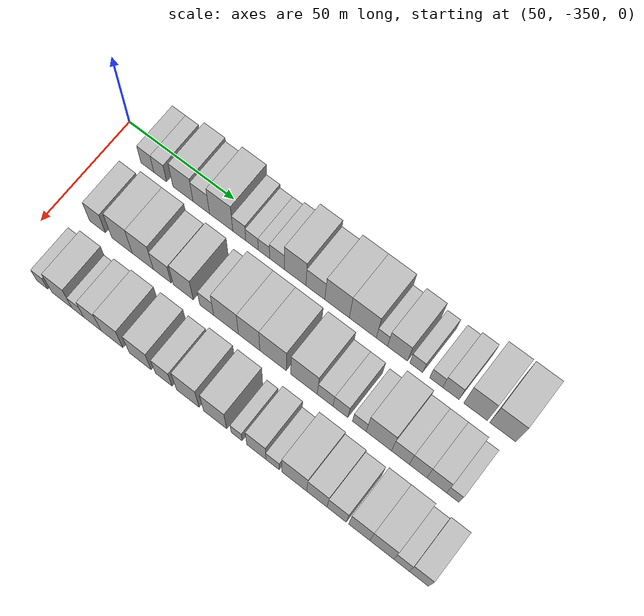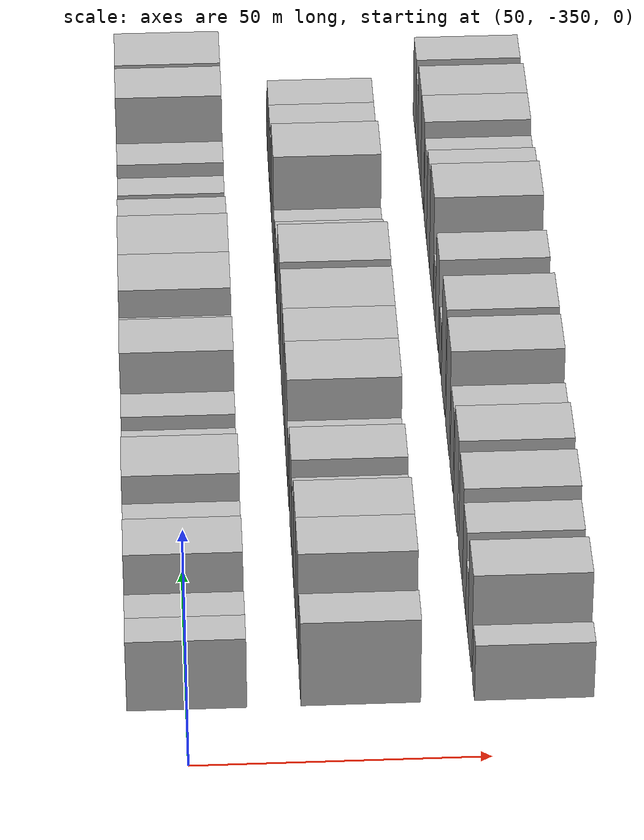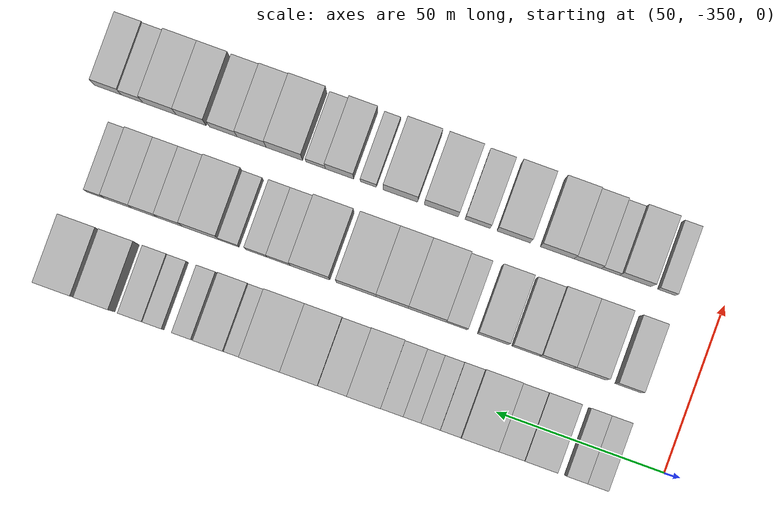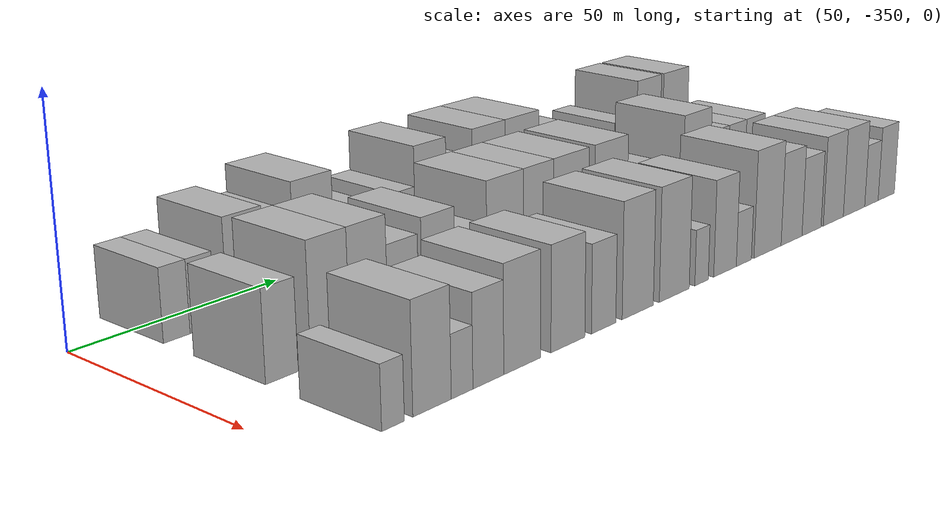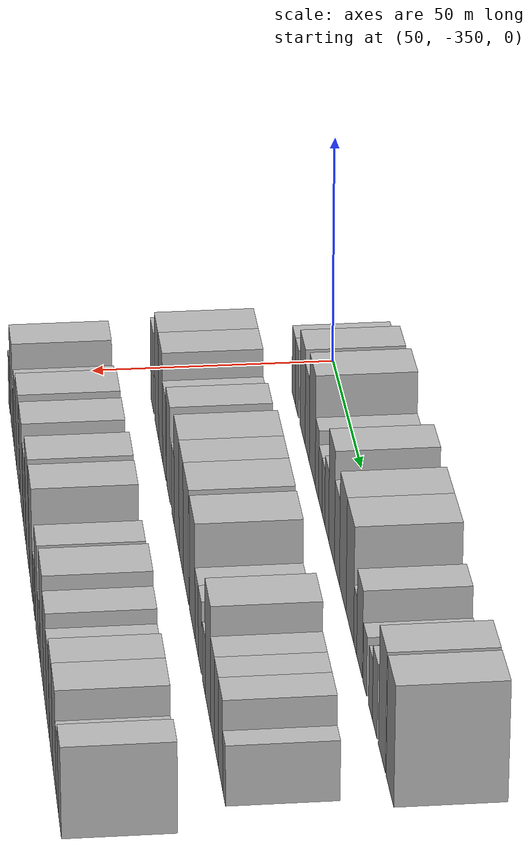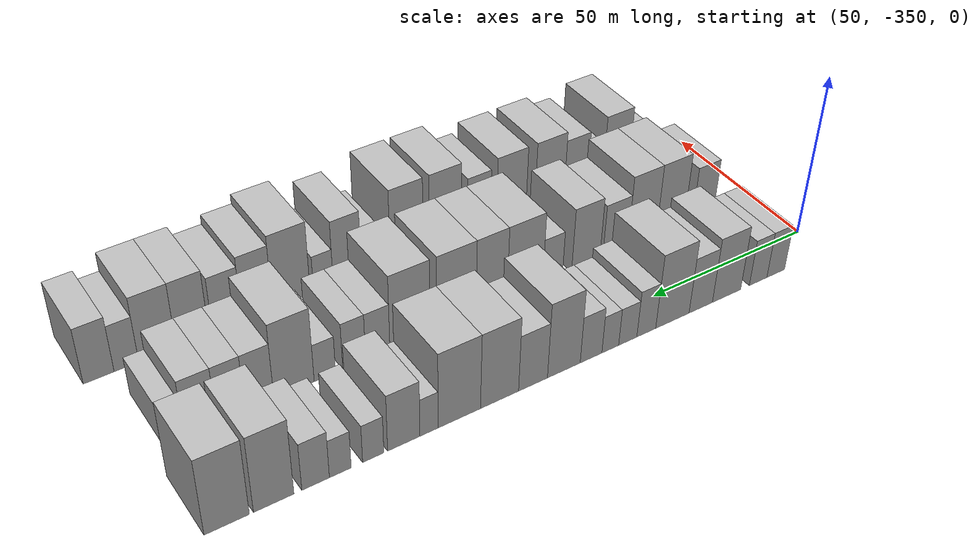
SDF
<sdf version="1.6">
 <world name="default">
  <model name="building_1">
   <static>1</static>
   <pose>50.0000 -332.9100 0 0.000000 0.000000 0.000000</pose>
   <link name="link">
    <pose>0 0 7.50 0 0 0</pose>
    <collision name="collision"><geometry><box><size>20.0000 6.1801 15.0000</size></box></geometry></collision>
    <visual name="visual">
     <cast_shadows>0</cast_shadows>
     <geometry><box><size>20.0000 6.1801 15.0000</size></box></geometry>
     <material>
      <script>
       <uri>model://HANNAS_wall/materials/scripts</uri>
       <uri>model://HANNAS_wall/materials/textures</uri>
       <name>vrc/HANNAS_wall</name>
      </script>
     </material>
    </visual>
   </link>
  </model>
  <model name="building_2">
   <static>1</static>
   <pose>50.0000 -326.7911 0 0.000000 0.000000 0.000000</pose>
   <link name="link">
    <pose>0 0 7.50 0 0 0</pose>
    <collision name="collision"><geometry><box><size>20.0000 6.0576 15.0000</size></box></geometry></collision>
    <visual name="visual">
     <cast_shadows>0</cast_shadows>
     <geometry><box><size>20.0000 6.0576 15.0000</size></box></geometry>
     <material>
      <script>
       <uri>model://HANNAS_wall/materials/scripts</uri>
       <uri>model://HANNAS_wall/materials/textures</uri>
       <name>vrc/HANNAS_wall</name>
      </script>
     </material>
    </visual>
   </link>
  </model>
  <model name="building_3">
   <static>1</static>
   <pose>50.0000 -315.9852 0 0.000000 0.000000 0.000000</pose>
   <link name="link">
    <pose>0 0 10.50 0 0 0</pose>
    <collision name="collision"><geometry><box><size>20.0000 9.5543 21.0000</size></box></geometry></collision>
    <visual name="visual">
     <cast_shadows>0</cast_shadows>
     <geometry><box><size>20.0000 9.5543 21.0000</size></box></geometry>
     <material>
      <script>
       <uri>model://HANNAS_wall/materials/scripts</uri>
       <uri>model://HANNAS_wall/materials/textures</uri>
       <name>vrc/HANNAS_wall</name>
      </script>
     </material>
    </visual>
   </link>
  </model>
  <model name="building_4">
   <static>1</static>
   <pose>50.0000 -307.3368 0 0.000000 0.000000 0.000000</pose>
   <link name="link">
    <pose>0 0 9.00 0 0 0</pose>
    <collision name="collision"><geometry><box><size>20.0000 7.7426 18.0000</size></box></geometry></collision>
    <visual name="visual">
     <cast_shadows>0</cast_shadows>
     <geometry><box><size>20.0000 7.7426 18.0000</size></box></geometry>
     <material>
      <script>
       <uri>model://HANNAS_wall/materials/scripts</uri>
       <uri>model://HANNAS_wall/materials/textures</uri>
       <name>vrc/HANNAS_wall</name>
      </script>
     </material>
    </visual>
   </link>
  </model>
  <model name="building_5">
   <static>1</static>
   <pose>50.0000 -298.0444 0 0.000000 0.000000 0.000000</pose>
   <link name="link">
    <pose>0 0 12.00 0 0 0</pose>
    <collision name="collision"><geometry><box><size>20.0000 10.8422 24.0000</size></box></geometry></collision>
    <visual name="visual">
     <cast_shadows>0</cast_shadows>
     <geometry><box><size>20.0000 10.8422 24.0000</size></box></geometry>
     <material>
      <script>
       <uri>model://HANNAS_wall/materials/scripts</uri>
       <uri>model://HANNAS_wall/materials/textures</uri>
       <name>vrc/HANNAS_wall</name>
      </script>
     </material>
    </visual>
   </link>
  </model>
  <model name="building_6">
   <static>1</static>
   <pose>50.0000 -289.6141 0 0.000000 0.000000 0.000000</pose>
   <link name="link">
    <pose>0 0 7.50 0 0 0</pose>
    <collision name="collision"><geometry><box><size>20.0000 6.0184 15.0000</size></box></geometry></collision>
    <visual name="visual">
     <cast_shadows>0</cast_shadows>
     <geometry><box><size>20.0000 6.0184 15.0000</size></box></geometry>
     <material>
      <script>
       <uri>model://HANNAS_wall/materials/scripts</uri>
       <uri>model://HANNAS_wall/materials/textures</uri>
       <name>vrc/HANNAS_wall</name>
      </script>
     </material>
    </visual>
   </link>
  </model>
  <model name="building_7">
   <static>1</static>
   <pose>50.0000 -283.7388 0 0.000000 0.000000 0.000000</pose>
   <link name="link">
    <pose>0 0 6.00 0 0 0</pose>
    <collision name="collision"><geometry><box><size>20.0000 5.7323 12.0000</size></box></geometry></collision>
    <visual name="visual">
     <cast_shadows>0</cast_shadows>
     <geometry><box><size>20.0000 5.7323 12.0000</size></box></geometry>
     <material>
      <script>
       <uri>model://HANNAS_wall/materials/scripts</uri>
       <uri>model://HANNAS_wall/materials/textures</uri>
       <name>vrc/HANNAS_wall</name>
      </script>
     </material>
    </visual>
   </link>
  </model>
  <model name="building_8">
   <static>1</static>
   <pose>50.0000 -278.2686 0 0.000000 0.000000 0.000000</pose>
   <link name="link">
    <pose>0 0 6.00 0 0 0</pose>
    <collision name="collision"><geometry><box><size>20.0000 5.2081 12.0000</size></box></geometry></collision>
    <visual name="visual">
     <cast_shadows>0</cast_shadows>
     <geometry><box><size>20.0000 5.2081 12.0000</size></box></geometry>
     <material>
      <script>
       <uri>model://HANNAS_wall/materials/scripts</uri>
       <uri>model://HANNAS_wall/materials/textures</uri>
       <name>vrc/HANNAS_wall</name>
      </script>
     </material>
    </visual>
   </link>
  </model>
  <model name="building_9">
   <static>1</static>
   <pose>50.0000 -272.3338 0 0.000000 0.000000 0.000000</pose>
   <link name="link">
    <pose>0 0 7.50 0 0 0</pose>
    <collision name="collision"><geometry><box><size>20.0000 6.6615 15.0000</size></box></geometry></collision>
    <visual name="visual">
     <cast_shadows>0</cast_shadows>
     <geometry><box><size>20.0000 6.6615 15.0000</size></box></geometry>
     <material>
      <script>
       <uri>model://HANNAS_wall/materials/scripts</uri>
       <uri>model://HANNAS_wall/materials/textures</uri>
       <name>vrc/HANNAS_wall</name>
      </script>
     </material>
    </visual>
   </link>
  </model>
  <model name="building_10">
   <static>1</static>
   <pose>50.0000 -264.0705 0 0.000000 0.000000 0.000000</pose>
   <link name="link">
    <pose>0 0 12.00 0 0 0</pose>
    <collision name="collision"><geometry><box><size>20.0000 9.8651 24.0000</size></box></geometry></collision>
    <visual name="visual">
     <cast_shadows>0</cast_shadows>
     <geometry><box><size>20.0000 9.8651 24.0000</size></box></geometry>
     <material>
      <script>
       <uri>model://HANNAS_wall/materials/scripts</uri>
       <uri>model://HANNAS_wall/materials/textures</uri>
       <name>vrc/HANNAS_wall</name>
      </script>
     </material>
    </visual>
   </link>
  </model>
  <model name="building_11">
   <static>1</static>
   <pose>50.0000 -254.8802 0 0.000000 0.000000 0.000000</pose>
   <link name="link">
    <pose>0 0 9.00 0 0 0</pose>
    <collision name="collision"><geometry><box><size>20.0000 8.5157 18.0000</size></box></geometry></collision>
    <visual name="visual">
     <cast_shadows>0</cast_shadows>
     <geometry><box><size>20.0000 8.5157 18.0000</size></box></geometry>
     <material>
      <script>
       <uri>model://HANNAS_wall/materials/scripts</uri>
       <uri>model://HANNAS_wall/materials/textures</uri>
       <name>vrc/HANNAS_wall</name>
      </script>
     </material>
    </visual>
   </link>
  </model>
  <model name="building_12">
   <static>1</static>
   <pose>50.0000 -245.1258 0 0.000000 0.000000 0.000000</pose>
   <link name="link">
    <pose>0 0 12.00 0 0 0</pose>
    <collision name="collision"><geometry><box><size>20.0000 10.9930 24.0000</size></box></geometry></collision>
    <visual name="visual">
     <cast_shadows>0</cast_shadows>
     <geometry><box><size>20.0000 10.9930 24.0000</size></box></geometry>
     <material>
      <script>
       <uri>model://HANNAS_wall/materials/scripts</uri>
       <uri>model://HANNAS_wall/materials/textures</uri>
       <name>vrc/HANNAS_wall</name>
      </script>
     </material>
    </visual>
   </link>
  </model>
  <model name="building_13">
   <static>1</static>
   <pose>50.0000 -233.6606 0 0.000000 0.000000 0.000000</pose>
   <link name="link">
    <pose>0 0 12.00 0 0 0</pose>
    <collision name="collision"><geometry><box><size>20.0000 11.9374 24.0000</size></box></geometry></collision>
    <visual name="visual">
     <cast_shadows>0</cast_shadows>
     <geometry><box><size>20.0000 11.9374 24.0000</size></box></geometry>
     <material>
      <script>
       <uri>model://HANNAS_wall/materials/scripts</uri>
       <uri>model://HANNAS_wall/materials/textures</uri>
       <name>vrc/HANNAS_wall</name>
      </script>
     </material>
    </visual>
   </link>
  </model>
  <model name="building_14">
   <static>1</static>
   <pose>50.0000 -225.2074 0 0.000000 0.000000 0.000000</pose>
   <link name="link">
    <pose>0 0 6.00 0 0 0</pose>
    <collision name="collision"><geometry><box><size>20.0000 4.9690 12.0000</size></box></geometry></collision>
    <visual name="visual">
     <cast_shadows>0</cast_shadows>
     <geometry><box><size>20.0000 4.9690 12.0000</size></box></geometry>
     <material>
      <script>
       <uri>model://HANNAS_wall/materials/scripts</uri>
       <uri>model://HANNAS_wall/materials/textures</uri>
       <name>vrc/HANNAS_wall</name>
      </script>
     </material>
    </visual>
   </link>
  </model>
  <model name="building_15">
   <static>1</static>
   <pose>50.0000 -218.3566 0 0.000000 0.000000 0.000000</pose>
   <link name="link">
    <pose>0 0 9.00 0 0 0</pose>
    <collision name="collision"><geometry><box><size>20.0000 8.7326 18.0000</size></box></geometry></collision>
    <visual name="visual">
     <cast_shadows>0</cast_shadows>
     <geometry><box><size>20.0000 8.7326 18.0000</size></box></geometry>
     <material>
      <script>
       <uri>model://HANNAS_wall/materials/scripts</uri>
       <uri>model://HANNAS_wall/materials/textures</uri>
       <name>vrc/HANNAS_wall</name>
      </script>
     </material>
    </visual>
   </link>
  </model>
  <model name="building_16">
   <static>1</static>
   <pose>50.0000 -210.1730 0 0.000000 0.000000 0.000000</pose>
   <link name="link">
    <pose>0 0 6.00 0 0 0</pose>
    <collision name="collision"><geometry><box><size>20.0000 5.6346 12.0000</size></box></geometry></collision>
    <visual name="visual">
     <cast_shadows>0</cast_shadows>
     <geometry><box><size>20.0000 5.6346 12.0000</size></box></geometry>
     <material>
      <script>
       <uri>model://HANNAS_wall/materials/scripts</uri>
       <uri>model://HANNAS_wall/materials/textures</uri>
       <name>vrc/HANNAS_wall</name>
      </script>
     </material>
    </visual>
   </link>
  </model>
  <model name="building_17">
   <static>1</static>
   <pose>50.0000 -201.5281 0 0.000000 0.000000 0.000000</pose>
   <link name="link">
    <pose>0 0 6.00 0 0 0</pose>
    <collision name="collision"><geometry><box><size>20.0000 5.6551 12.0000</size></box></geometry></collision>
    <visual name="visual">
     <cast_shadows>0</cast_shadows>
     <geometry><box><size>20.0000 5.6551 12.0000</size></box></geometry>
     <material>
      <script>
       <uri>model://HANNAS_wall/materials/scripts</uri>
       <uri>model://HANNAS_wall/materials/textures</uri>
       <name>vrc/HANNAS_wall</name>
      </script>
     </material>
    </visual>
   </link>
  </model>
  <model name="building_18">
   <static>1</static>
   <pose>50.0000 -195.1755 0 0.000000 0.000000 0.000000</pose>
   <link name="link">
    <pose>0 0 7.50 0 0 0</pose>
    <collision name="collision"><geometry><box><size>20.0000 7.0502 15.0000</size></box></geometry></collision>
    <visual name="visual">
     <cast_shadows>0</cast_shadows>
     <geometry><box><size>20.0000 7.0502 15.0000</size></box></geometry>
     <material>
      <script>
       <uri>model://HANNAS_wall/materials/scripts</uri>
       <uri>model://HANNAS_wall/materials/textures</uri>
       <name>vrc/HANNAS_wall</name>
      </script>
     </material>
    </visual>
   </link>
  </model>
  <model name="building_19">
   <static>1</static>
   <pose>50.0000 -184.6039 0 0.000000 0.000000 0.000000</pose>
   <link name="link">
    <pose>0 0 12.00 0 0 0</pose>
    <collision name="collision"><geometry><box><size>20.0000 10.0929 24.0000</size></box></geometry></collision>
    <visual name="visual">
     <cast_shadows>0</cast_shadows>
     <geometry><box><size>20.0000 10.0929 24.0000</size></box></geometry>
     <material>
      <script>
       <uri>model://HANNAS_wall/materials/scripts</uri>
       <uri>model://HANNAS_wall/materials/textures</uri>
       <name>vrc/HANNAS_wall</name>
      </script>
     </material>
    </visual>
   </link>
  </model>
  <model name="building_20">
   <static>1</static>
   <pose>50.0000 -173.0577 0 0.000000 0.000000 0.000000</pose>
   <link name="link">
    <pose>0 0 12.00 0 0 0</pose>
    <collision name="collision"><geometry><box><size>20.0000 10.9995 24.0000</size></box></geometry></collision>
    <visual name="visual">
     <cast_shadows>0</cast_shadows>
     <geometry><box><size>20.0000 10.9995 24.0000</size></box></geometry>
     <material>
      <script>
       <uri>model://HANNAS_wall/materials/scripts</uri>
       <uri>model://HANNAS_wall/materials/textures</uri>
       <name>vrc/HANNAS_wall</name>
      </script>
     </material>
    </visual>
   </link>
  </model>
  <model name="building_76">
   <static>1</static>
   <pose>79.0000 -332.2090 0 0.000000 0.000000 0.000000</pose>
   <link name="link">
    <pose>0 0 9.00 0 0 0</pose>
    <collision name="collision"><geometry><box><size>20.0000 7.5820 18.0000</size></box></geometry></collision>
    <visual name="visual">
     <cast_shadows>0</cast_shadows>
     <geometry><box><size>20.0000 7.5820 18.0000</size></box></geometry>
     <material>
      <script>
       <uri>model://HANNAS_wall/materials/scripts</uri>
       <uri>model://HANNAS_wall/materials/textures</uri>
       <name>vrc/HANNAS_wall</name>
      </script>
     </material>
    </visual>
   </link>
  </model>
  <model name="building_77">
   <static>1</static>
   <pose>79.0000 -320.5746 0 0.000000 0.000000 0.000000</pose>
   <link name="link">
    <pose>0 0 12.00 0 0 0</pose>
    <collision name="collision"><geometry><box><size>20.0000 9.6867 24.0000</size></box></geometry></collision>
    <visual name="visual">
     <cast_shadows>0</cast_shadows>
     <geometry><box><size>20.0000 9.6867 24.0000</size></box></geometry>
     <material>
      <script>
       <uri>model://HANNAS_wall/materials/scripts</uri>
       <uri>model://HANNAS_wall/materials/textures</uri>
       <name>vrc/HANNAS_wall</name>
      </script>
     </material>
    </visual>
   </link>
  </model>
  <model name="building_78">
   <static>1</static>
   <pose>79.0000 -310.8074 0 0.000000 0.000000 0.000000</pose>
   <link name="link">
    <pose>0 0 12.00 0 0 0</pose>
    <collision name="collision"><geometry><box><size>20.0000 9.8477 24.0000</size></box></geometry></collision>
    <visual name="visual">
     <cast_shadows>0</cast_shadows>
     <geometry><box><size>20.0000 9.8477 24.0000</size></box></geometry>
     <material>
      <script>
       <uri>model://HANNAS_wall/materials/scripts</uri>
       <uri>model://HANNAS_wall/materials/textures</uri>
       <name>vrc/HANNAS_wall</name>
      </script>
     </material>
    </visual>
   </link>
  </model>
  <model name="building_79">
   <static>1</static>
   <pose>79.0000 -301.7420 0 0.000000 0.000000 0.000000</pose>
   <link name="link">
    <pose>0 0 9.00 0 0 0</pose>
    <collision name="collision"><geometry><box><size>20.0000 8.2830 18.0000</size></box></geometry></collision>
    <visual name="visual">
     <cast_shadows>0</cast_shadows>
     <geometry><box><size>20.0000 8.2830 18.0000</size></box></geometry>
     <material>
      <script>
       <uri>model://HANNAS_wall/materials/scripts</uri>
       <uri>model://HANNAS_wall/materials/textures</uri>
       <name>vrc/HANNAS_wall</name>
      </script>
     </material>
    </visual>
   </link>
  </model>
  <model name="building_80">
   <static>1</static>
   <pose>79.0000 -291.9932 0 0.000000 0.000000 0.000000</pose>
   <link name="link">
    <pose>0 0 10.50 0 0 0</pose>
    <collision name="collision"><geometry><box><size>20.0000 9.2146 21.0000</size></box></geometry></collision>
    <visual name="visual">
     <cast_shadows>0</cast_shadows>
     <geometry><box><size>20.0000 9.2146 21.0000</size></box></geometry>
     <material>
      <script>
       <uri>model://HANNAS_wall/materials/scripts</uri>
       <uri>model://HANNAS_wall/materials/textures</uri>
       <name>vrc/HANNAS_wall</name>
      </script>
     </material>
    </visual>
   </link>
  </model>
  <model name="building_81">
   <static>1</static>
   <pose>79.0000 -281.2052 0 0.000000 0.000000 0.000000</pose>
   <link name="link">
    <pose>0 0 7.50 0 0 0</pose>
    <collision name="collision"><geometry><box><size>20.0000 6.3614 15.0000</size></box></geometry></collision>
    <visual name="visual">
     <cast_shadows>0</cast_shadows>
     <geometry><box><size>20.0000 6.3614 15.0000</size></box></geometry>
     <material>
      <script>
       <uri>model://HANNAS_wall/materials/scripts</uri>
       <uri>model://HANNAS_wall/materials/textures</uri>
       <name>vrc/HANNAS_wall</name>
      </script>
     </material>
    </visual>
   </link>
  </model>
  <model name="building_82">
   <static>1</static>
   <pose>79.0000 -272.4083 0 0.000000 0.000000 0.000000</pose>
   <link name="link">
    <pose>0 0 12.00 0 0 0</pose>
    <collision name="collision"><geometry><box><size>20.0000 11.2324 24.0000</size></box></geometry></collision>
    <visual name="visual">
     <cast_shadows>0</cast_shadows>
     <geometry><box><size>20.0000 11.2324 24.0000</size></box></geometry>
     <material>
      <script>
       <uri>model://HANNAS_wall/materials/scripts</uri>
       <uri>model://HANNAS_wall/materials/textures</uri>
       <name>vrc/HANNAS_wall</name>
      </script>
     </material>
    </visual>
   </link>
  </model>
  <model name="building_83">
   <static>1</static>
   <pose>79.0000 -261.9801 0 0.000000 0.000000 0.000000</pose>
   <link name="link">
    <pose>0 0 12.00 0 0 0</pose>
    <collision name="collision"><geometry><box><size>20.0000 9.6240 24.0000</size></box></geometry></collision>
    <visual name="visual">
     <cast_shadows>0</cast_shadows>
     <geometry><box><size>20.0000 9.6240 24.0000</size></box></geometry>
     <material>
      <script>
       <uri>model://HANNAS_wall/materials/scripts</uri>
       <uri>model://HANNAS_wall/materials/textures</uri>
       <name>vrc/HANNAS_wall</name>
      </script>
     </material>
    </visual>
   </link>
  </model>
  <model name="building_84">
   <static>1</static>
   <pose>79.0000 -251.2605 0 0.000000 0.000000 0.000000</pose>
   <link name="link">
    <pose>0 0 12.00 0 0 0</pose>
    <collision name="collision"><geometry><box><size>20.0000 11.8152 24.0000</size></box></geometry></collision>
    <visual name="visual">
     <cast_shadows>0</cast_shadows>
     <geometry><box><size>20.0000 11.8152 24.0000</size></box></geometry>
     <material>
      <script>
       <uri>model://HANNAS_wall/materials/scripts</uri>
       <uri>model://HANNAS_wall/materials/textures</uri>
       <name>vrc/HANNAS_wall</name>
      </script>
     </material>
    </visual>
   </link>
  </model>
  <model name="building_85">
   <static>1</static>
   <pose>79.0000 -237.4911 0 0.000000 0.000000 0.000000</pose>
   <link name="link">
    <pose>0 0 12.00 0 0 0</pose>
    <collision name="collision"><geometry><box><size>20.0000 11.7236 24.0000</size></box></geometry></collision>
    <visual name="visual">
     <cast_shadows>0</cast_shadows>
     <geometry><box><size>20.0000 11.7236 24.0000</size></box></geometry>
     <material>
      <script>
       <uri>model://HANNAS_wall/materials/scripts</uri>
       <uri>model://HANNAS_wall/materials/textures</uri>
       <name>vrc/HANNAS_wall</name>
      </script>
     </material>
    </visual>
   </link>
  </model>
  <model name="building_86">
   <static>1</static>
   <pose>79.0000 -228.1500 0 0.000000 0.000000 0.000000</pose>
   <link name="link">
    <pose>0 0 7.50 0 0 0</pose>
    <collision name="collision"><geometry><box><size>20.0000 6.9586 15.0000</size></box></geometry></collision>
    <visual name="visual">
     <cast_shadows>0</cast_shadows>
     <geometry><box><size>20.0000 6.9586 15.0000</size></box></geometry>
     <material>
      <script>
       <uri>model://HANNAS_wall/materials/scripts</uri>
       <uri>model://HANNAS_wall/materials/textures</uri>
       <name>vrc/HANNAS_wall</name>
      </script>
     </material>
    </visual>
   </link>
  </model>
  <model name="building_87">
   <static>1</static>
   <pose>79.0000 -221.4534 0 0.000000 0.000000 0.000000</pose>
   <link name="link">
    <pose>0 0 7.50 0 0 0</pose>
    <collision name="collision"><geometry><box><size>20.0000 6.4345 15.0000</size></box></geometry></collision>
    <visual name="visual">
     <cast_shadows>0</cast_shadows>
     <geometry><box><size>20.0000 6.4345 15.0000</size></box></geometry>
     <material>
      <script>
       <uri>model://HANNAS_wall/materials/scripts</uri>
       <uri>model://HANNAS_wall/materials/textures</uri>
       <name>vrc/HANNAS_wall</name>
      </script>
     </material>
    </visual>
   </link>
  </model>
  <model name="building_88">
   <static>1</static>
   <pose>79.0000 -213.2704 0 0.000000 0.000000 0.000000</pose>
   <link name="link">
    <pose>0 0 6.00 0 0 0</pose>
    <collision name="collision"><geometry><box><size>20.0000 5.9315 12.0000</size></box></geometry></collision>
    <visual name="visual">
     <cast_shadows>0</cast_shadows>
     <geometry><box><size>20.0000 5.9315 12.0000</size></box></geometry>
     <material>
      <script>
       <uri>model://HANNAS_wall/materials/scripts</uri>
       <uri>model://HANNAS_wall/materials/textures</uri>
       <name>vrc/HANNAS_wall</name>
      </script>
     </material>
    </visual>
   </link>
  </model>
  <model name="building_89">
   <static>1</static>
   <pose>79.0000 -204.8390 0 0.000000 0.000000 0.000000</pose>
   <link name="link">
    <pose>0 0 12.00 0 0 0</pose>
    <collision name="collision"><geometry><box><size>20.0000 10.9314 24.0000</size></box></geometry></collision>
    <visual name="visual">
     <cast_shadows>0</cast_shadows>
     <geometry><box><size>20.0000 10.9314 24.0000</size></box></geometry>
     <material>
      <script>
       <uri>model://HANNAS_wall/materials/scripts</uri>
       <uri>model://HANNAS_wall/materials/textures</uri>
       <name>vrc/HANNAS_wall</name>
      </script>
     </material>
    </visual>
   </link>
  </model>
  <model name="building_90">
   <static>1</static>
   <pose>79.0000 -195.5587 0 0.000000 0.000000 0.000000</pose>
   <link name="link">
    <pose>0 0 9.00 0 0 0</pose>
    <collision name="collision"><geometry><box><size>20.0000 7.6292 18.0000</size></box></geometry></collision>
    <visual name="visual">
     <cast_shadows>0</cast_shadows>
     <geometry><box><size>20.0000 7.6292 18.0000</size></box></geometry>
     <material>
      <script>
       <uri>model://HANNAS_wall/materials/scripts</uri>
       <uri>model://HANNAS_wall/materials/textures</uri>
       <name>vrc/HANNAS_wall</name>
      </script>
     </material>
    </visual>
   </link>
  </model>
  <model name="building_91">
   <static>1</static>
   <pose>79.0000 -188.0225 0 0.000000 0.000000 0.000000</pose>
   <link name="link">
    <pose>0 0 9.00 0 0 0</pose>
    <collision name="collision"><geometry><box><size>20.0000 7.4432 18.0000</size></box></geometry></collision>
    <visual name="visual">
     <cast_shadows>0</cast_shadows>
     <geometry><box><size>20.0000 7.4432 18.0000</size></box></geometry>
     <material>
      <script>
       <uri>model://HANNAS_wall/materials/scripts</uri>
       <uri>model://HANNAS_wall/materials/textures</uri>
       <name>vrc/HANNAS_wall</name>
      </script>
     </material>
    </visual>
   </link>
  </model>
  <model name="building_92">
   <static>1</static>
   <pose>79.0000 -180.1500 0 0.000000 0.000000 0.000000</pose>
   <link name="link">
    <pose>0 0 9.00 0 0 0</pose>
    <collision name="collision"><geometry><box><size>20.0000 8.3017 18.0000</size></box></geometry></collision>
    <visual name="visual">
     <cast_shadows>0</cast_shadows>
     <geometry><box><size>20.0000 8.3017 18.0000</size></box></geometry>
     <material>
      <script>
       <uri>model://HANNAS_wall/materials/scripts</uri>
       <uri>model://HANNAS_wall/materials/textures</uri>
       <name>vrc/HANNAS_wall</name>
      </script>
     </material>
    </visual>
   </link>
  </model>
  <model name="building_93">
   <static>1</static>
   <pose>79.0000 -173.3465 0 0.000000 0.000000 0.000000</pose>
   <link name="link">
    <pose>0 0 6.00 0 0 0</pose>
    <collision name="collision"><geometry><box><size>20.0000 5.3054 12.0000</size></box></geometry></collision>
    <visual name="visual">
     <cast_shadows>0</cast_shadows>
     <geometry><box><size>20.0000 5.3054 12.0000</size></box></geometry>
     <material>
      <script>
       <uri>model://HANNAS_wall/materials/scripts</uri>
       <uri>model://HANNAS_wall/materials/textures</uri>
       <name>vrc/HANNAS_wall</name>
      </script>
     </material>
    </visual>
   </link>
  </model>
  <model name="building_150">
   <static>1</static>
   <pose>108.0000 -333.3656 0 0.000000 0.000000 0.000000</pose>
   <link name="link">
    <pose>0 0 6.00 0 0 0</pose>
    <collision name="collision"><geometry><box><size>20.0000 5.2689 12.0000</size></box></geometry></collision>
    <visual name="visual">
     <cast_shadows>0</cast_shadows>
     <geometry><box><size>20.0000 5.2689 12.0000</size></box></geometry>
     <material>
      <script>
       <uri>model://HANNAS_wall/materials/scripts</uri>
       <uri>model://HANNAS_wall/materials/textures</uri>
       <name>vrc/HANNAS_wall</name>
      </script>
     </material>
    </visual>
   </link>
  </model>
  <model name="building_151">
   <static>1</static>
   <pose>108.0000 -324.0512 0 0.000000 0.000000 0.000000</pose>
   <link name="link">
    <pose>0 0 10.50 0 0 0</pose>
    <collision name="collision"><geometry><box><size>20.0000 9.3598 21.0000</size></box></geometry></collision>
    <visual name="visual">
     <cast_shadows>0</cast_shadows>
     <geometry><box><size>20.0000 9.3598 21.0000</size></box></geometry>
     <material>
      <script>
       <uri>model://HANNAS_wall/materials/scripts</uri>
       <uri>model://HANNAS_wall/materials/textures</uri>
       <name>vrc/HANNAS_wall</name>
      </script>
     </material>
    </visual>
   </link>
  </model>
  <model name="building_152">
   <static>1</static>
   <pose>108.0000 -316.6237 0 0.000000 0.000000 0.000000</pose>
   <link name="link">
    <pose>0 0 6.00 0 0 0</pose>
    <collision name="collision"><geometry><box><size>20.0000 5.4952 12.0000</size></box></geometry></collision>
    <visual name="visual">
     <cast_shadows>0</cast_shadows>
     <geometry><box><size>20.0000 5.4952 12.0000</size></box></geometry>
     <material>
      <script>
       <uri>model://HANNAS_wall/materials/scripts</uri>
       <uri>model://HANNAS_wall/materials/textures</uri>
       <name>vrc/HANNAS_wall</name>
      </script>
     </material>
    </visual>
   </link>
  </model>
  <model name="building_153">
   <static>1</static>
   <pose>108.0000 -309.8207 0 0.000000 0.000000 0.000000</pose>
   <link name="link">
    <pose>0 0 9.00 0 0 0</pose>
    <collision name="collision"><geometry><box><size>20.0000 8.1108 18.0000</size></box></geometry></collision>
    <visual name="visual">
     <cast_shadows>0</cast_shadows>
     <geometry><box><size>20.0000 8.1108 18.0000</size></box></geometry>
     <material>
      <script>
       <uri>model://HANNAS_wall/materials/scripts</uri>
       <uri>model://HANNAS_wall/materials/textures</uri>
       <name>vrc/HANNAS_wall</name>
      </script>
     </material>
    </visual>
   </link>
  </model>
  <model name="building_154">
   <static>1</static>
   <pose>108.0000 -300.7350 0 0.000000 0.000000 0.000000</pose>
   <link name="link">
    <pose>0 0 10.50 0 0 0</pose>
    <collision name="collision"><geometry><box><size>20.0000 10.0607 21.0000</size></box></geometry></collision>
    <visual name="visual">
     <cast_shadows>0</cast_shadows>
     <geometry><box><size>20.0000 10.0607 21.0000</size></box></geometry>
     <material>
      <script>
       <uri>model://HANNAS_wall/materials/scripts</uri>
       <uri>model://HANNAS_wall/materials/textures</uri>
       <name>vrc/HANNAS_wall</name>
      </script>
     </material>
    </visual>
   </link>
  </model>
  <model name="building_155">
   <static>1</static>
   <pose>108.0000 -287.7283 0 0.000000 0.000000 0.000000</pose>
   <link name="link">
    <pose>0 0 10.50 0 0 0</pose>
    <collision name="collision"><geometry><box><size>20.0000 9.9527 21.0000</size></box></geometry></collision>
    <visual name="visual">
     <cast_shadows>0</cast_shadows>
     <geometry><box><size>20.0000 9.9527 21.0000</size></box></geometry>
     <material>
      <script>
       <uri>model://HANNAS_wall/materials/scripts</uri>
       <uri>model://HANNAS_wall/materials/textures</uri>
       <name>vrc/HANNAS_wall</name>
      </script>
     </material>
    </visual>
   </link>
  </model>
  <model name="building_156">
   <static>1</static>
   <pose>108.0000 -276.9783 0 0.000000 0.000000 0.000000</pose>
   <link name="link">
    <pose>0 0 9.00 0 0 0</pose>
    <collision name="collision"><geometry><box><size>20.0000 7.5473 18.0000</size></box></geometry></collision>
    <visual name="visual">
     <cast_shadows>0</cast_shadows>
     <geometry><box><size>20.0000 7.5473 18.0000</size></box></geometry>
     <material>
      <script>
       <uri>model://HANNAS_wall/materials/scripts</uri>
       <uri>model://HANNAS_wall/materials/textures</uri>
       <name>vrc/HANNAS_wall</name>
      </script>
     </material>
    </visual>
   </link>
  </model>
  <model name="building_157">
   <static>1</static>
   <pose>108.0000 -266.1223 0 0.000000 0.000000 0.000000</pose>
   <link name="link">
    <pose>0 0 12.00 0 0 0</pose>
    <collision name="collision"><geometry><box><size>20.0000 10.1645 24.0000</size></box></geometry></collision>
    <visual name="visual">
     <cast_shadows>0</cast_shadows>
     <geometry><box><size>20.0000 10.1645 24.0000</size></box></geometry>
     <material>
      <script>
       <uri>model://HANNAS_wall/materials/scripts</uri>
       <uri>model://HANNAS_wall/materials/textures</uri>
       <name>vrc/HANNAS_wall</name>
      </script>
     </material>
    </visual>
   </link>
  </model>
  <model name="building_158">
   <static>1</static>
   <pose>108.0000 -253.8876 0 0.000000 0.000000 0.000000</pose>
   <link name="link">
    <pose>0 0 12.00 0 0 0</pose>
    <collision name="collision"><geometry><box><size>20.0000 10.3050 24.0000</size></box></geometry></collision>
    <visual name="visual">
     <cast_shadows>0</cast_shadows>
     <geometry><box><size>20.0000 10.3050 24.0000</size></box></geometry>
     <material>
      <script>
       <uri>model://HANNAS_wall/materials/scripts</uri>
       <uri>model://HANNAS_wall/materials/textures</uri>
       <name>vrc/HANNAS_wall</name>
      </script>
     </material>
    </visual>
   </link>
  </model>
  <model name="building_159">
   <static>1</static>
   <pose>108.0000 -244.3276 0 0.000000 0.000000 0.000000</pose>
   <link name="link">
    <pose>0 0 6.00 0 0 0</pose>
    <collision name="collision"><geometry><box><size>20.0000 4.8149 12.0000</size></box></geometry></collision>
    <visual name="visual">
     <cast_shadows>0</cast_shadows>
     <geometry><box><size>20.0000 4.8149 12.0000</size></box></geometry>
     <material>
      <script>
       <uri>model://HANNAS_wall/materials/scripts</uri>
       <uri>model://HANNAS_wall/materials/textures</uri>
       <name>vrc/HANNAS_wall</name>
      </script>
     </material>
    </visual>
   </link>
  </model>
  <model name="building_160">
   <static>1</static>
   <pose>108.0000 -235.6945 0 0.000000 0.000000 0.000000</pose>
   <link name="link">
    <pose>0 0 10.50 0 0 0</pose>
    <collision name="collision"><geometry><box><size>20.0000 8.4515 21.0000</size></box></geometry></collision>
    <visual name="visual">
     <cast_shadows>0</cast_shadows>
     <geometry><box><size>20.0000 8.4515 21.0000</size></box></geometry>
     <material>
      <script>
       <uri>model://HANNAS_wall/materials/scripts</uri>
       <uri>model://HANNAS_wall/materials/textures</uri>
       <name>vrc/HANNAS_wall</name>
      </script>
     </material>
    </visual>
   </link>
  </model>
  <model name="building_161">
   <static>1</static>
   <pose>108.0000 -228.5650 0 0.000000 0.000000 0.000000</pose>
   <link name="link">
    <pose>0 0 6.00 0 0 0</pose>
    <collision name="collision"><geometry><box><size>20.0000 5.8074 12.0000</size></box></geometry></collision>
    <visual name="visual">
     <cast_shadows>0</cast_shadows>
     <geometry><box><size>20.0000 5.8074 12.0000</size></box></geometry>
     <material>
      <script>
       <uri>model://HANNAS_wall/materials/scripts</uri>
       <uri>model://HANNAS_wall/materials/textures</uri>
       <name>vrc/HANNAS_wall</name>
      </script>
     </material>
    </visual>
   </link>
  </model>
  <model name="building_162">
   <static>1</static>
   <pose>108.0000 -219.2243 0 0.000000 0.000000 0.000000</pose>
   <link name="link">
    <pose>0 0 12.00 0 0 0</pose>
    <collision name="collision"><geometry><box><size>20.0000 10.8739 24.0000</size></box></geometry></collision>
    <visual name="visual">
     <cast_shadows>0</cast_shadows>
     <geometry><box><size>20.0000 10.8739 24.0000</size></box></geometry>
     <material>
      <script>
       <uri>model://HANNAS_wall/materials/scripts</uri>
       <uri>model://HANNAS_wall/materials/textures</uri>
       <name>vrc/HANNAS_wall</name>
      </script>
     </material>
    </visual>
   </link>
  </model>
  <model name="building_163">
   <static>1</static>
   <pose>108.0000 -209.4152 0 0.000000 0.000000 0.000000</pose>
   <link name="link">
    <pose>0 0 10.50 0 0 0</pose>
    <collision name="collision"><geometry><box><size>20.0000 8.7443 21.0000</size></box></geometry></collision>
    <visual name="visual">
     <cast_shadows>0</cast_shadows>
     <geometry><box><size>20.0000 8.7443 21.0000</size></box></geometry>
     <material>
      <script>
       <uri>model://HANNAS_wall/materials/scripts</uri>
       <uri>model://HANNAS_wall/materials/textures</uri>
       <name>vrc/HANNAS_wall</name>
      </script>
     </material>
    </visual>
   </link>
  </model>
  <model name="building_164">
   <static>1</static>
   <pose>108.0000 -200.9263 0 0.000000 0.000000 0.000000</pose>
   <link name="link">
    <pose>0 0 9.00 0 0 0</pose>
    <collision name="collision"><geometry><box><size>20.0000 8.2334 18.0000</size></box></geometry></collision>
    <visual name="visual">
     <cast_shadows>0</cast_shadows>
     <geometry><box><size>20.0000 8.2334 18.0000</size></box></geometry>
     <material>
      <script>
       <uri>model://HANNAS_wall/materials/scripts</uri>
       <uri>model://HANNAS_wall/materials/textures</uri>
       <name>vrc/HANNAS_wall</name>
      </script>
     </material>
    </visual>
   </link>
  </model>
  <model name="building_165">
   <static>1</static>
   <pose>108.0000 -191.3124 0 0.000000 0.000000 0.000000</pose>
   <link name="link">
    <pose>0 0 10.50 0 0 0</pose>
    <collision name="collision"><geometry><box><size>20.0000 8.9945 21.0000</size></box></geometry></collision>
    <visual name="visual">
     <cast_shadows>0</cast_shadows>
     <geometry><box><size>20.0000 8.9945 21.0000</size></box></geometry>
     <material>
      <script>
       <uri>model://HANNAS_wall/materials/scripts</uri>
       <uri>model://HANNAS_wall/materials/textures</uri>
       <name>vrc/HANNAS_wall</name>
      </script>
     </material>
    </visual>
   </link>
  </model>
  <model name="building_166">
   <static>1</static>
   <pose>108.0000 -181.8193 0 0.000000 0.000000 0.000000</pose>
   <link name="link">
    <pose>0 0 10.50 0 0 0</pose>
    <collision name="collision"><geometry><box><size>20.0000 9.9916 21.0000</size></box></geometry></collision>
    <visual name="visual">
     <cast_shadows>0</cast_shadows>
     <geometry><box><size>20.0000 9.9916 21.0000</size></box></geometry>
     <material>
      <script>
       <uri>model://HANNAS_wall/materials/scripts</uri>
       <uri>model://HANNAS_wall/materials/textures</uri>
       <name>vrc/HANNAS_wall</name>
      </script>
     </material>
    </visual>
   </link>
  </model>
  <model name="building_167">
   <static>1</static>
   <pose>108.0000 -173.5884 0 0.000000 0.000000 0.000000</pose>
   <link name="link">
    <pose>0 0 7.50 0 0 0</pose>
    <collision name="collision"><geometry><box><size>20.0000 6.4702 15.0000</size></box></geometry></collision>
    <visual name="visual">
     <cast_shadows>0</cast_shadows>
     <geometry><box><size>20.0000 6.4702 15.0000</size></box></geometry>
     <material>
      <script>
       <uri>model://HANNAS_wall/materials/scripts</uri>
       <uri>model://HANNAS_wall/materials/textures</uri>
       <name>vrc/HANNAS_wall</name>
      </script>
     </material>
    </visual>
   </link>
  </model>
  <model name="building_168">
   <static>1</static>
   <pose>108.0000 -166.3527 0 0.000000 0.000000 0.000000</pose>
   <link name="link">
    <pose>0 0 9.00 0 0 0</pose>
    <collision name="collision"><geometry><box><size>20.0000 8.0011 18.0000</size></box></geometry></collision>
    <visual name="visual">
     <cast_shadows>0</cast_shadows>
     <geometry><box><size>20.0000 8.0011 18.0000</size></box></geometry>
     <material>
      <script>
       <uri>model://HANNAS_wall/materials/scripts</uri>
       <uri>model://HANNAS_wall/materials/textures</uri>
       <name>vrc/HANNAS_wall</name>
      </script>
     </material>
    </visual>
   </link>
  </model>
 </world>
</sdf>
